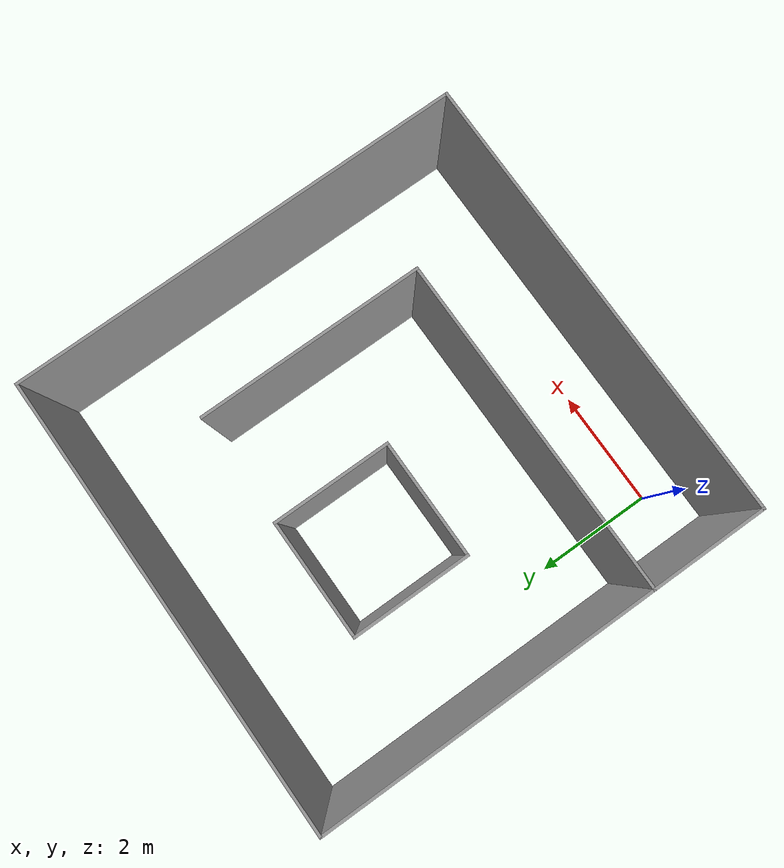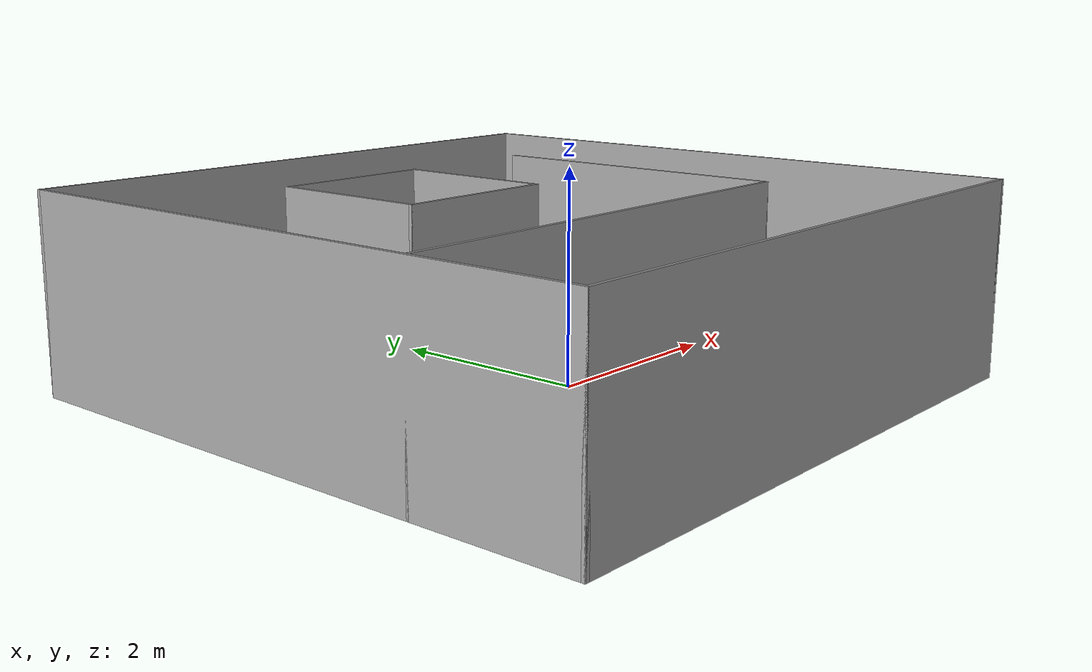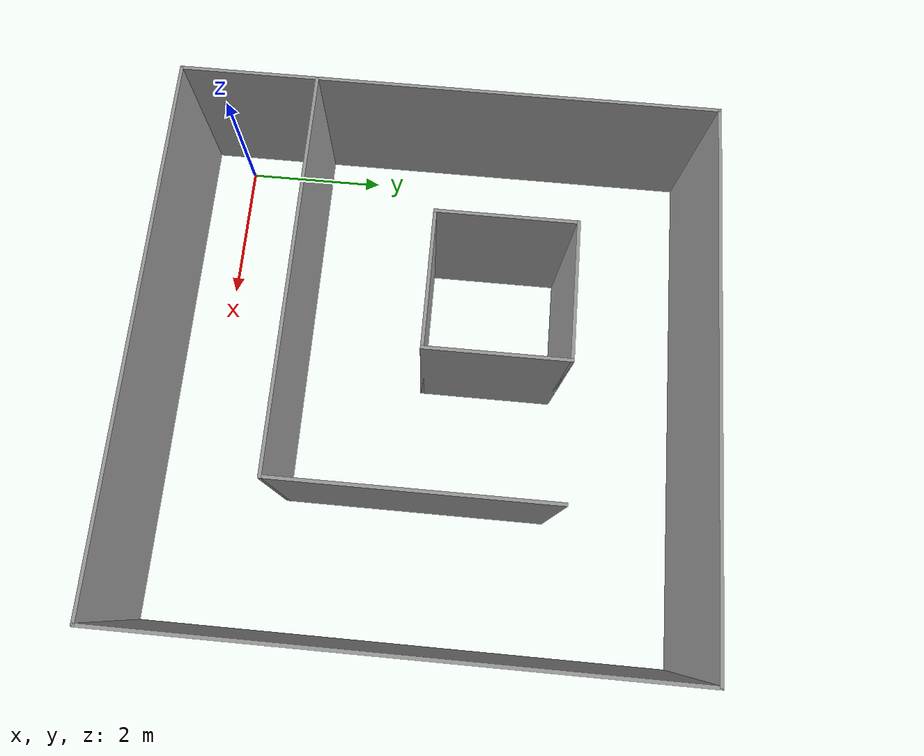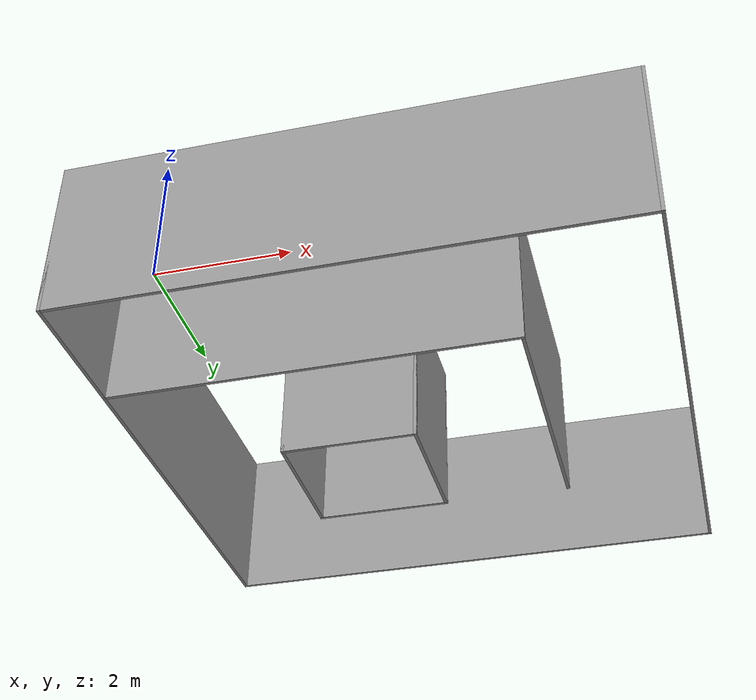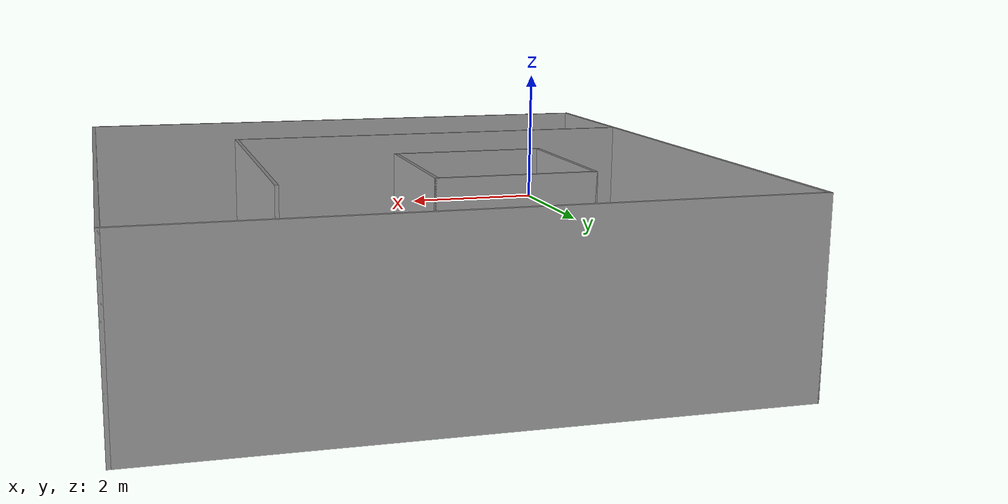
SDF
<?xml version='1.0'?>
<sdf version='1.6'>
    <model name='autogenerated'>
    <pose frame=''>-2 -2 0 0 0 0</pose>

        <link name='Wall_0'>
            <collision name='Wall_0_Collision'>
            <geometry>
                <box>
                <size>0.05 8.1 2.5</size>
                </box>
            </geometry>
            <pose frame=''>0 0 0 0 0 0</pose>
            </collision>
            <visual name='Wall_0_Visual'>
            <pose frame=''>0 0 0 0 0 0</pose>
            <geometry>
                <box>
                <size>0.05 8.1 2.5</size>
                </box>
            </geometry>
            <material>
                <script>
                <uri>file://media/materials/scripts/gazebo.material</uri>
                <name>Gazebo/Grey</name>
                </script>
                <ambient>1 1 1 1</ambient>
            </material>
            </visual>
            <pose frame=''>0.975 5.0 0 0 0 0</pose>
        </link>

        <link name='Wall_1'>
            <collision name='Wall_1_Collision'>
            <geometry>
                <box>
                <size>0.05 8.1 2.5</size>
                </box>
            </geometry>
            <pose frame=''>0 0 0 0 0 0</pose>
            </collision>
            <visual name='Wall_1_Visual'>
            <pose frame=''>0 0 0 0 0 0</pose>
            <geometry>
                <box>
                <size>0.05 8.1 2.5</size>
                </box>
            </geometry>
            <material>
                <script>
                <uri>file://media/materials/scripts/gazebo.material</uri>
                <name>Gazebo/Grey</name>
                </script>
                <ambient>1 1 1 1</ambient>
            </material>
            </visual>
            <pose frame=''>9.025 5.0 0 0 0 0</pose>
        </link>

        <link name='Wall_2'>
            <collision name='Wall_2_Collision'>
            <geometry>
                <box>
                <size>8.1 0.05 2.5</size>
                </box>
            </geometry>
            <pose frame=''>0 0 0 0 0 0</pose>
            </collision>
            <visual name='Wall_2_Visual'>
            <pose frame=''>0 0 0 0 0 0</pose>
            <geometry>
                <box>
                <size>8.1 0.05 2.5</size>
                </box>
            </geometry>
            <material>
                <script>
                <uri>file://media/materials/scripts/gazebo.material</uri>
                <name>Gazebo/Grey</name>
                </script>
                <ambient>1 1 1 1</ambient>
            </material>
            </visual>
            <pose frame=''>5.0 0.975 0 0 0 0</pose>
        </link>

        <link name='Wall_3'>
            <collision name='Wall_3_Collision'>
            <geometry>
                <box>
                <size>8.1 0.05 2.5</size>
                </box>
            </geometry>
            <pose frame=''>0 0 0 0 0 0</pose>
            </collision>
            <visual name='Wall_3_Visual'>
            <pose frame=''>0 0 0 0 0 0</pose>
            <geometry>
                <box>
                <size>8.1 0.05 2.5</size>
                </box>
            </geometry>
            <material>
                <script>
                <uri>file://media/materials/scripts/gazebo.material</uri>
                <name>Gazebo/Grey</name>
                </script>
                <ambient>1 1 1 1</ambient>
            </material>
            </visual>
            <pose frame=''>5.0 9.025 0 0 0 0</pose>
        </link>

        <link name='Wall_4'>
            <collision name='Wall_4_Collision'>
            <geometry>
                <box>
                <size>6.05 0.05 2.5</size>
                </box>
            </geometry>
            <pose frame=''>0 0 0 0 0 0</pose>
            </collision>
            <visual name='Wall_4_Visual'>
            <pose frame=''>0 0 0 0 0 0</pose>
            <geometry>
                <box>
                <size>6.05 0.05 2.5</size>
                </box>
            </geometry>
            <material>
                <script>
                <uri>file://media/materials/scripts/gazebo.material</uri>
                <name>Gazebo/Grey</name>
                </script>
                <ambient>1 1 1 1</ambient>
            </material>
            </visual>
            <pose frame=''>3.975 3.025 0 0 0 0</pose>
        </link>

        <link name='Wall_5'>
            <collision name='Wall_5_Collision'>
            <geometry>
                <box>
                <size>0.05 4.05 2.5</size>
                </box>
            </geometry>
            <pose frame=''>0 0 0 0 0 0</pose>
            </collision>
            <visual name='Wall_5_Visual'>
            <pose frame=''>0 0 0 0 0 0</pose>
            <geometry>
                <box>
                <size>0.05 4.05 2.5</size>
                </box>
            </geometry>
            <material>
                <script>
                <uri>file://media/materials/scripts/gazebo.material</uri>
                <name>Gazebo/Grey</name>
                </script>
                <ambient>1 1 1 1</ambient>
            </material>
            </visual>
            <pose frame=''>6.975 5.025 0 0 0 0</pose>
        </link>

        <link name='Wall_6'>
            <collision name='Wall_6_Collision'>
            <geometry>
                <box>
                <size>0.05 2.1 2.5</size>
                </box>
            </geometry>
            <pose frame=''>0 0 0 0 0 0</pose>
            </collision>
            <visual name='Wall_6_Visual'>
            <pose frame=''>0 0 0 0 0 0</pose>
            <geometry>
                <box>
                <size>0.05 2.1 2.5</size>
                </box>
            </geometry>
            <material>
                <script>
                <uri>file://media/materials/scripts/gazebo.material</uri>
                <name>Gazebo/Grey</name>
                </script>
                <ambient>1 1 1 1</ambient>
            </material>
            </visual>
            <pose frame=''>2.975 6.0 0 0 0 0</pose>
        </link>

        <link name='Wall_7'>
            <collision name='Wall_7_Collision'>
            <geometry>
                <box>
                <size>0.05 2.1 2.5</size>
                </box>
            </geometry>
            <pose frame=''>0 0 0 0 0 0</pose>
            </collision>
            <visual name='Wall_7_Visual'>
            <pose frame=''>0 0 0 0 0 0</pose>
            <geometry>
                <box>
                <size>0.05 2.1 2.5</size>
                </box>
            </geometry>
            <material>
                <script>
                <uri>file://media/materials/scripts/gazebo.material</uri>
                <name>Gazebo/Grey</name>
                </script>
                <ambient>1 1 1 1</ambient>
            </material>
            </visual>
            <pose frame=''>5.025 6.0 0 0 0 0</pose>
        </link>

        <link name='Wall_8'>
            <collision name='Wall_8_Collision'>
            <geometry>
                <box>
                <size>2.1 0.05 2.5</size>
                </box>
            </geometry>
            <pose frame=''>0 0 0 0 0 0</pose>
            </collision>
            <visual name='Wall_8_Visual'>
            <pose frame=''>0 0 0 0 0 0</pose>
            <geometry>
                <box>
                <size>2.1 0.05 2.5</size>
                </box>
            </geometry>
            <material>
                <script>
                <uri>file://media/materials/scripts/gazebo.material</uri>
                <name>Gazebo/Grey</name>
                </script>
                <ambient>1 1 1 1</ambient>
            </material>
            </visual>
            <pose frame=''>4.0 4.975 0 0 0 0</pose>
        </link>

        <link name='Wall_9'>
            <collision name='Wall_9_Collision'>
            <geometry>
                <box>
                <size>2.1 0.05 2.5</size>
                </box>
            </geometry>
            <pose frame=''>0 0 0 0 0 0</pose>
            </collision>
            <visual name='Wall_9_Visual'>
            <pose frame=''>0 0 0 0 0 0</pose>
            <geometry>
                <box>
                <size>2.1 0.05 2.5</size>
                </box>
            </geometry>
            <material>
                <script>
                <uri>file://media/materials/scripts/gazebo.material</uri>
                <name>Gazebo/Grey</name>
                </script>
                <ambient>1 1 1 1</ambient>
            </material>
            </visual>
            <pose frame=''>4.0 7.025 0 0 0 0</pose>
        </link>

    <static>1</static>
    </model>
</sdf>
